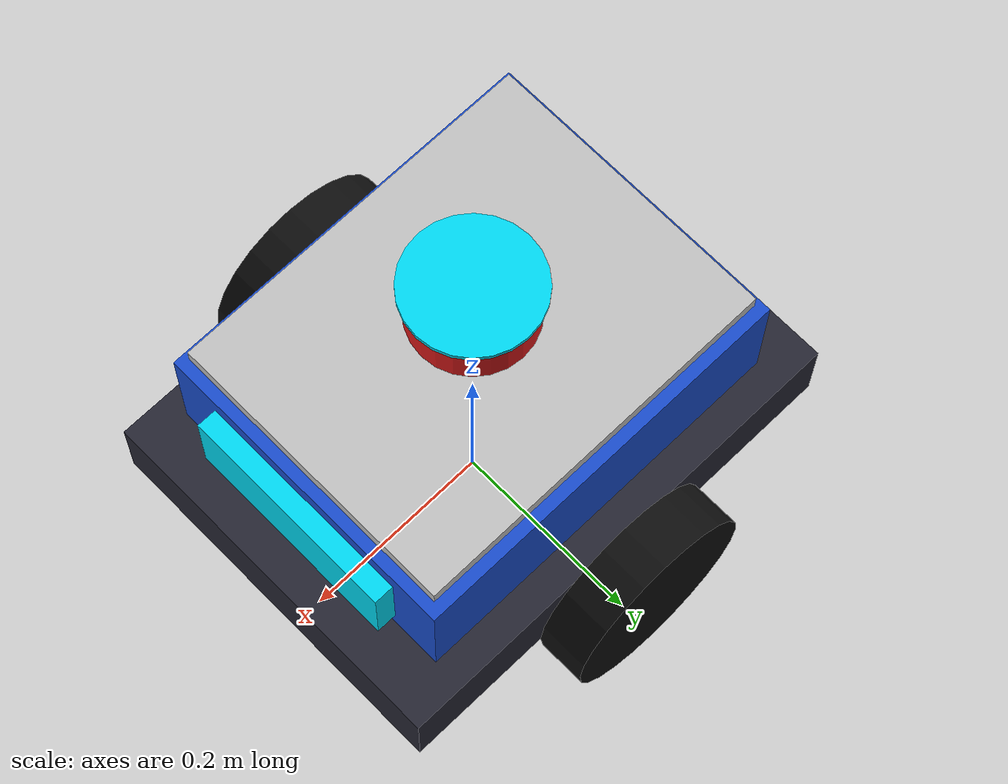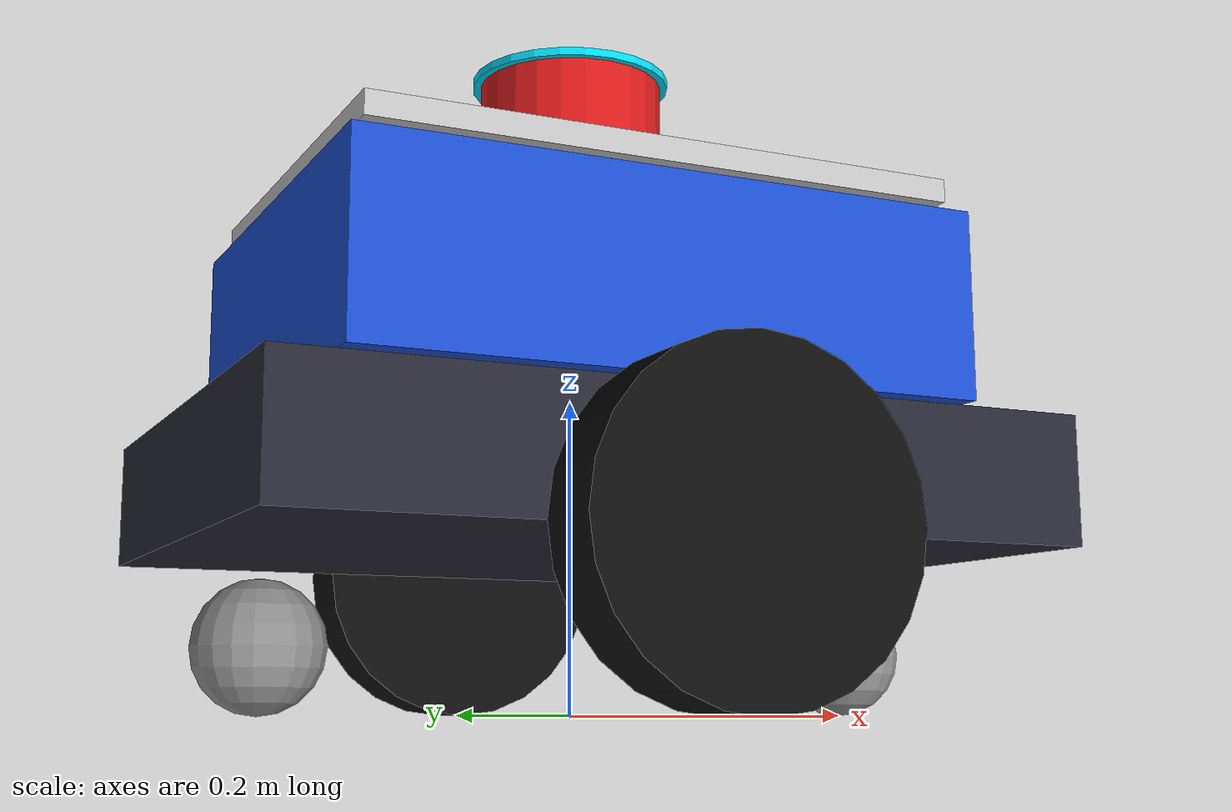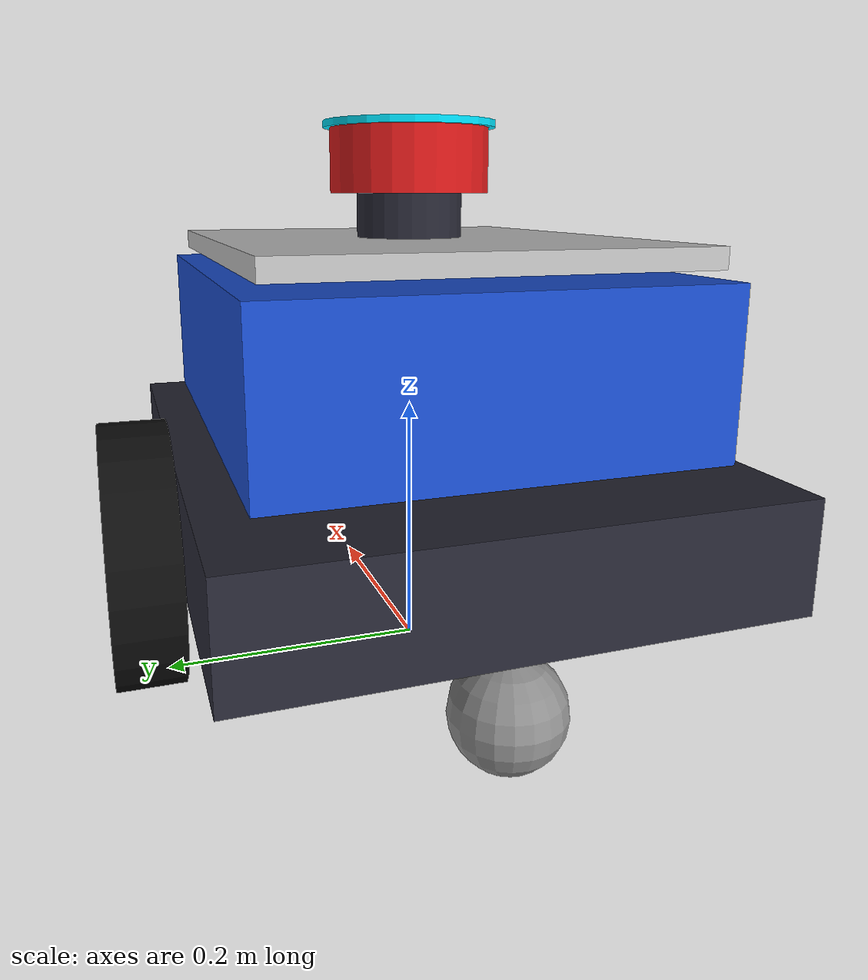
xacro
<?xml version="1.0"?>
<robot name="cafe_butler_robot" xmlns:xacro="http://www.ros.org/wiki/xacro">

  <!-- Materials -->
  <material name="robot_blue">
    <color rgba="0.10 0.30 0.80 1.0"/>
  </material>
  <material name="chassis_dark">
    <color rgba="0.15 0.15 0.20 1.0"/>
  </material>
  <material name="wheel_black">
    <color rgba="0.05 0.05 0.05 1.0"/>
  </material>
  <material name="caster_grey">
    <color rgba="0.55 0.55 0.55 1.0"/>
  </material>
  <material name="lidar_red">
    <color rgba="0.85 0.10 0.10 1.0"/>
  </material>
  <material name="screen_cyan">
    <color rgba="0.0 0.85 0.95 0.9"/>
  </material>
  <material name="tray_silver">
    <color rgba="0.75 0.75 0.75 1.0"/>
  </material>

  <!-- Dimensions -->
  <xacro:property name="wheel_radius" value="0.10"/>
  <xacro:property name="wheel_thickness" value="0.05"/>
  <xacro:property name="wheel_separation" value="0.43"/>

  <!-- Inertia macros -->
  <xacro:macro name="inertia_box" params="m l w h">
    <inertial>
      <mass value="${m}"/>
      <inertia
        ixx="${m*(h*h + w*w)/12.0}"
        ixy="0.0" ixz="0.0"
        iyy="${m*(l*l + h*h)/12.0}"
        iyz="0.0"
        izz="${m*(l*l + w*w)/12.0}"/>
    </inertial>
  </xacro:macro>

  <xacro:macro name="inertia_cylinder" params="m r h">
    <inertial>
      <mass value="${m}"/>
      <inertia
        ixx="${m*(3*r*r + h*h)/12.0}"
        ixy="0.0" ixz="0.0"
        iyy="${m*(3*r*r + h*h)/12.0}"
        iyz="0.0"
        izz="${m*r*r/2.0}"/>
    </inertial>
  </xacro:macro>

  <xacro:macro name="inertia_sphere" params="m r">
    <inertial>
      <mass value="${m}"/>
      <inertia
        ixx="${2*m*r*r/5.0}"
        ixy="0.0" ixz="0.0"
        iyy="${2*m*r*r/5.0}"
        iyz="0.0"
        izz="${2*m*r*r/5.0}"/>
    </inertial>
  </xacro:macro>

  <!-- Navigation reference frame -->
  <link name="base_footprint"/>

  <joint name="base_footprint_joint" type="fixed">
    <parent link="base_footprint"/>
    <child link="base_link"/>
    <origin xyz="0.0 0.0 ${wheel_radius}" rpy="0.0 0.0 0.0"/>
  </joint>

  <!-- Main chassis -->
  <link name="base_link">
    <visual name="base_lower_visual">
      <origin xyz="0.0 0.0 0.04" rpy="0.0 0.0 0.0"/>
      <geometry><box size="0.50 0.38 0.08"/></geometry>
      <material name="chassis_dark"/>
    </visual>
    <visual name="base_upper_visual">
      <origin xyz="0.0 0.0 0.15" rpy="0.0 0.0 0.0"/>
      <geometry><box size="0.40 0.32 0.12"/></geometry>
      <material name="robot_blue"/>
    </visual>
    <visual name="screen_visual">
      <origin xyz="0.21 0.0 0.15" rpy="0.0 0.0 0.0"/>
      <geometry><box size="0.02 0.22 0.08"/></geometry>
      <material name="screen_cyan"/>
    </visual>
    <visual name="tray_visual">
      <origin xyz="0.0 0.0 0.225" rpy="0.0 0.0 0.0"/>
      <geometry><box size="0.38 0.30 0.015"/></geometry>
      <material name="tray_silver"/>
    </visual>
    <collision name="base_lower_collision">
      <origin xyz="0.0 0.0 0.07" rpy="0.0 0.0 0.0"/>
      <geometry><box size="0.50 0.38 0.14"/></geometry>
    </collision>
    <collision name="base_upper_collision">
      <origin xyz="0.0 0.0 0.17" rpy="0.0 0.0 0.0"/>
      <geometry><box size="0.40 0.32 0.14"/></geometry>
    </collision>
    <xacro:inertia_box m="8.0" l="0.50" w="0.38" h="0.22"/>
  </link>

  <!-- Wheels -->
  <link name="left_drive_wheel">
    <visual name="left_wheel_visual">
      <geometry><cylinder radius="${wheel_radius}" length="${wheel_thickness}"/></geometry>
      <material name="wheel_black"/>
    </visual>
    <collision name="left_wheel_collision">
      <geometry><cylinder radius="${wheel_radius}" length="${wheel_thickness}"/></geometry>
    </collision>
    <xacro:inertia_cylinder m="0.80" r="${wheel_radius}" h="${wheel_thickness}"/>
  </link>

  <joint name="left_wheel_joint" type="continuous">
    <parent link="base_link"/>
    <child link="left_drive_wheel"/>
    <origin xyz="0.0 ${wheel_separation/2.0} 0.0" rpy="${-pi/2} 0.0 0.0"/>
    <axis xyz="0.0 0.0 1.0"/>
    <dynamics damping="0.1" friction="0.0"/>
  </joint>

  <link name="right_drive_wheel">
    <visual name="right_wheel_visual">
      <geometry><cylinder radius="${wheel_radius}" length="${wheel_thickness}"/></geometry>
      <material name="wheel_black"/>
    </visual>
    <collision name="right_wheel_collision">
      <geometry><cylinder radius="${wheel_radius}" length="${wheel_thickness}"/></geometry>
    </collision>
    <xacro:inertia_cylinder m="0.80" r="${wheel_radius}" h="${wheel_thickness}"/>
  </link>

  <joint name="right_wheel_joint" type="continuous">
    <parent link="base_link"/>
    <child link="right_drive_wheel"/>
    <origin xyz="0.0 ${-wheel_separation/2.0} 0.0" rpy="${-pi/2} 0.0 0.0"/>
    <axis xyz="0.0 0.0 1.0"/>
    <dynamics damping="0.1" friction="0.0"/>
  </joint>

  <!-- Casters -->
  <link name="front_caster_wheel">
    <visual name="front_caster_visual">
      <geometry><sphere radius="0.04"/></geometry>
      <material name="caster_grey"/>
    </visual>
    <collision name="front_caster_collision">
      <geometry><sphere radius="0.04"/></geometry>
    </collision>
    <xacro:inertia_sphere m="0.15" r="0.04"/>
  </link>

  <joint name="front_caster_joint" type="fixed">
    <parent link="base_link"/>
    <child link="front_caster_wheel"/>
    <origin xyz="0.20 0.0 -0.06" rpy="0.0 0.0 0.0"/>
  </joint>

  <link name="rear_caster_wheel">
    <visual name="rear_caster_visual">
      <geometry><sphere radius="0.04"/></geometry>
      <material name="caster_grey"/>
    </visual>
    <collision name="rear_caster_collision">
      <geometry><sphere radius="0.04"/></geometry>
    </collision>
    <xacro:inertia_sphere m="0.15" r="0.04"/>
  </link>

  <joint name="rear_caster_joint" type="fixed">
    <parent link="base_link"/>
    <child link="rear_caster_wheel"/>
    <origin xyz="-0.20 0.0 -0.06" rpy="0.0 0.0 0.0"/>
  </joint>

  <!-- Lidar -->
  <link name="laser_mount">
    <visual name="laser_mount_visual">
      <geometry><cylinder radius="0.04" length="0.04"/></geometry>
      <material name="chassis_dark"/>
    </visual>
    <collision name="laser_mount_collision">
      <geometry><cylinder radius="0.04" length="0.04"/></geometry>
    </collision>
    <xacro:inertia_cylinder m="0.05" r="0.04" h="0.04"/>
  </link>

  <joint name="laser_mount_joint" type="fixed">
    <parent link="base_link"/>
    <child link="laser_mount"/>
    <origin xyz="0.0 0.0 0.245" rpy="0.0 0.0 0.0"/>
  </joint>

  <link name="laser_frame">
    <visual name="laser_body_visual">
      <geometry><cylinder radius="0.06" length="0.05"/></geometry>
      <material name="lidar_red"/>
    </visual>
    <visual name="laser_ring_visual">
      <origin xyz="0.0 0.0 0.025" rpy="0.0 0.0 0.0"/>
      <geometry><cylinder radius="0.065" length="0.005"/></geometry>
      <material name="screen_cyan"/>
    </visual>
    <collision name="laser_collision">
      <geometry><cylinder radius="0.06" length="0.06"/></geometry>
    </collision>
    <xacro:inertia_cylinder m="0.10" r="0.06" h="0.06"/>
  </link>

  <joint name="laser_joint" type="fixed">
    <parent link="laser_mount"/>
    <child link="laser_frame"/>
    <origin xyz="0.0 0.0 0.045" rpy="0.0 0.0 0.0"/>
  </joint>

  <!-- Gazebo contact/material properties -->
  <gazebo reference="left_drive_wheel">
    <mu1>1.5</mu1>
    <mu2>1.5</mu2>
    <kp>1000000.0</kp>
    <kd>10.0</kd>
    <minDepth>0.001</minDepth>
    <maxVel>1.0</maxVel>
    <material>Gazebo/Black</material>
  </gazebo>

  <gazebo reference="right_drive_wheel">
    <mu1>1.5</mu1>
    <mu2>1.5</mu2>
    <kp>1000000.0</kp>
    <kd>10.0</kd>
    <minDepth>0.001</minDepth>
    <maxVel>1.0</maxVel>
    <material>Gazebo/Black</material>
  </gazebo>

  <gazebo reference="front_caster_wheel">
    <mu1>0.001</mu1>
    <mu2>0.001</mu2>
    <kp>1000000.0</kp>
    <kd>10.0</kd>
    <material>Gazebo/Grey</material>
  </gazebo>

  <gazebo reference="rear_caster_wheel">
    <mu1>0.001</mu1>
    <mu2>0.001</mu2>
    <kp>1000000.0</kp>
    <kd>10.0</kd>
    <material>Gazebo/Grey</material>
  </gazebo>

  <gazebo reference="base_link">
    <material>Gazebo/Blue</material>
  </gazebo>

  <gazebo reference="laser_frame">
    <material>Gazebo/Red</material>
    <sensor name="lidar" type="gpu_lidar">
      <pose>0 0 0 0 0 0</pose>
      <always_on>true</always_on>
      <update_rate>15</update_rate>
      <visualize>true</visualize>
      <topic>scan</topic>
      <gz_frame_id>laser_frame</gz_frame_id>
      <lidar>
        <scan>
          <horizontal>
            <samples>360</samples>
            <resolution>1</resolution>
            <min_angle>-3.14159265</min_angle>
            <max_angle>3.14159265</max_angle>
          </horizontal>
          <vertical>
            <samples>1</samples>
            <resolution>1</resolution>
            <min_angle>0.0</min_angle>
            <max_angle>0.0</max_angle>
          </vertical>
        </scan>
        <range>
          <min>0.15</min>
          <max>12.0</max>
          <resolution>0.01</resolution>
        </range>
        <noise>
          <type>gaussian</type>
          <mean>0.0</mean>
          <stddev>0.01</stddev>
        </noise>
      </lidar>
    </sensor>
  </gazebo>

  <!-- Gazebo Harmonic differential drive and joint state publishers -->
  <gazebo>
    <plugin filename="gz-sim-diff-drive-system"
            name="gz::sim::systems::DiffDrive">
      <left_joint>left_wheel_joint</left_joint>
      <right_joint>right_wheel_joint</right_joint>
      <wheel_separation>${wheel_separation}</wheel_separation>
      <wheel_radius>${wheel_radius}</wheel_radius>
      <odom_publish_frequency>20</odom_publish_frequency>
      <topic>cmd_vel</topic>
      <odom_topic>odom</odom_topic>
      <tf_topic>tf</tf_topic>
      <frame_id>odom</frame_id>
      <child_frame_id>base_footprint</child_frame_id>
      <max_linear_acceleration>1.0</max_linear_acceleration>
    </plugin>
  </gazebo>

  <gazebo>
    <plugin filename="gz-sim-joint-state-publisher-system"
            name="gz::sim::systems::JointStatePublisher">
      <topic>joint_states</topic>
      <joint_name>left_wheel_joint</joint_name>
      <joint_name>right_wheel_joint</joint_name>
    </plugin>
  </gazebo>

</robot>
